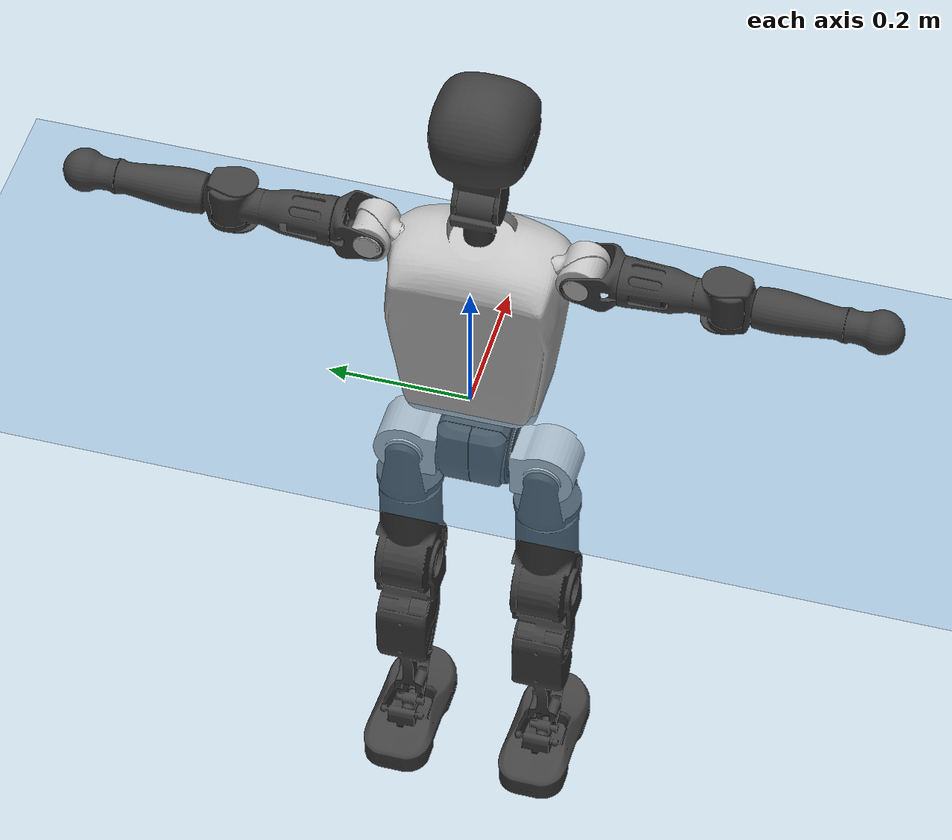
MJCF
<mujoco model="T1">
  <compiler angle="radian" assetdir="assets" balanceinertia="true" inertiafromgeom="false"/>

  <option timestep="0.005" density="1.2" viscosity="2e-05"/>

  <size nkey="1"/>

  <visual>
    <quality shadowsize="8192"/>
    <map shadowclip="0.5"/>
  </visual>

  <default>
    <default class="/">
      <joint armature="0.01" damping="0.01" frictionloss="0.1"/>
      <geom contype="0" conaffinity="0" group="1" solref="-1000 -80"/>
      <site size="0.01 0.005 0.005" group="5"/>
      <general forcelimited="true" biastype="affine" gainprm="25" biasprm="0 -25 -0.6"/>
      <default class="t1">
        <geom rgba="0.25 0.25 0.25 1"/>
        <default class="visual">
          <geom type="mesh" group="2"/>
        </default>
        <default class="collision">
          <geom group="3"/>
        </default>
        <default class="foot">
          <geom size="0.1115 0.05 0.015" type="box" condim="6" group="4" priority="1" solimp="0.015 1 0.015"/>
        </default>
        <default class="reward_collision_sphere">
          <geom group="5" rgba="1 0 0 1"/>
        </default>
      </default>
    </default>
  </default>

  <asset>
    <texture type="skybox" colorspace="auto" name="//unnamed_texture_0" builtin="gradient" rgb1="0.95 0.95 0.95" rgb2="0.95 0.95 0.95" width="100" height="600"/>
    <texture type="2d" colorspace="auto" name="texplane" builtin="checker" rgb1="0.345 0.575 0.748" rgb2="0.345 0.575 0.748" markrgb="1 1 1" width="512" height="512"/>
    <material name="MatPlane" class="/" texture="texplane" texuniform="true" texrepeat="2 2" specular="0.9"/>
    <mesh name="Trunk" class="/" file="Trunk.stl"/>
    <mesh name="H1" class="/" file="H1.stl"/>
    <mesh name="H2" class="/" file="H2.stl"/>
    <mesh name="AL1" class="/" file="AL1.stl"/>
    <mesh name="AL2" class="/" file="AL2.stl"/>
    <mesh name="AL3" class="/" file="AL3.stl"/>
    <mesh name="left_hand_link" class="/" file="left_hand_link.stl"/>
    <mesh name="AR1" class="/" file="AR1.stl"/>
    <mesh name="AR2" class="/" file="AR2.stl"/>
    <mesh name="AR3" class="/" file="AR3.stl"/>
    <mesh name="right_hand_link" class="/" file="right_hand_link.stl"/>
    <mesh name="Waist" class="/" file="Waist.stl"/>
    <mesh name="Hip_Pitch_Left" class="/" file="Hip_Pitch_Left.stl"/>
    <mesh name="Hip_Roll_Left" class="/" file="Hip_Roll_Left.stl"/>
    <mesh name="Hip_Yaw_Left" class="/" file="Hip_Yaw_Left.stl"/>
    <mesh name="Shank_Left" class="/" file="Shank_Left.stl"/>
    <mesh name="Ankle_Cross_Left" class="/" file="Ankle_Cross_Left.stl"/>
    <mesh name="left_foot_link" class="/" file="left_foot_link.stl"/>
    <mesh name="Hip_Pitch_Right" class="/" file="Hip_Pitch_Right.stl"/>
    <mesh name="Hip_Roll_Right" class="/" file="Hip_Roll_Right.stl"/>
    <mesh name="Hip_Yaw_Right" class="/" file="Hip_Yaw_Right.stl"/>
    <mesh name="Shank_Right" class="/" file="Shank_Right.stl"/>
    <mesh name="Ankle_Cross_Right" class="/" file="Ankle_Cross_Right.stl"/>
    <mesh name="right_foot_link" class="/" file="right_foot_link.stl"/>
  </asset>

  <worldbody>
    <geom name="floor" class="/" size="100 100 0.125" type="plane" group="0" material="MatPlane"/>
    <light name="toplight_shadow" class="/" pos="0 0 5" dir="0.0990148 0.0990148 -0.990148" type="directional" ambient="0.04 0.04 0.04" diffuse="0.55 0.55 0.55" specular="0.12 0.12 0.12"/>
    <light name="toplight_fill" class="/" pos="0 0 5" dir="0.0990148 0.0990148 -0.990148" type="directional" castshadow="false" ambient="0.04 0.04 0.04" diffuse="0.3 0.3 0.3" specular="0.08 0.08 0.08"/>
    <body name="trunk" childclass="t1" pos="-0.000216921 -0.000488655 -0.00135007" quat="1 -0.000585684 0.000382669 -0.000460508">
      <inertial pos="0.0401683 -0.000587472 0.117792" quat="0.999955 0.000241185 -0.00946858 -0.000403614" mass="9.16606" diaginertia="0.0194421 0.0527783 0.0964303"/>
      <joint name="//unnamed_joint_0" type="free" armature="0" damping="0" frictionloss="0"/>
      <geom name="//unnamed_geom_1" class="visual" rgba="0.76 0.76 0.76 1" mesh="Trunk"/>
      <geom name="//unnamed_geom_2" class="collision" size="0.0696039 0.0928052 0.139208" pos="0.0440444 0 0.134085" type="box"/>
      <geom name="//unnamed_geom_3" class="reward_collision_sphere" size="0.106726" pos="0.0440444 0 0.111737"/>
      <geom name="//unnamed_geom_4" class="reward_collision_sphere" size="0.0139208" pos="0.0440444 0.0792801 0"/>
      <geom name="//unnamed_geom_5" class="reward_collision_sphere" size="0.0139208" pos="0.0440444 -0.0792801 0"/>
      <geom name="//unnamed_geom_6" class="reward_collision_sphere" size="0.0139208" pos="0.0440444 0.0997997 0.201127"/>
      <geom name="//unnamed_geom_7" class="reward_collision_sphere" size="0.0139208" pos="0.0440444 -0.0997997 0.201127"/>
      <site name="imu" pos="-0.00637878 -0.00231799 0.000349974" size="0.00928052"/>
      <camera name="track" pos="0 -1.86541 0" quat="0.707107 0.707107 0 0" mode="trackcom"/>
      <camera name="ego_camera" pos="0.089557 0 0.469297" quat="-0.5 -0.5 0.5 0.5"/>
      <body name="H1" pos="0.0448386 -0.000146349 0.271227" quat="1 0.000164719 -0.000522325 0.000252062">
        <inertial pos="-0.000907031 -0.00250091 0.0638616" quat="0.764153 -0.0132054 0.00160441 0.644897" mass="0.353734" diaginertia="5.1106e-05 0.000159924 0.000262973"/>
        <joint name="AAHead_yaw" pos="0 0 0" axis="0.000507711 0.00126394 0.999999" stiffness="0.000575807" range="-1.60759 1.57964" armature="0.00944029" damping="0.0144418" frictionloss="0.0885234"/>
        <geom name="//unnamed_geom_8" class="visual" mesh="H1"/>
        <body name="H2" pos="0.000520818 -0.000524705 0.0690344" quat="1 0.000485208 -0.000410856 -0.000488273">
          <inertial pos="0.00535848 0.00120131 0.110135" quat="0.988459 0.106144 -0.0745227 -0.0782852" mass="0.495121" diaginertia="0.000435552 0.00135939 0.00300418"/>
          <joint name="Head_pitch" pos="0 0 0" axis="-0.00363505 -0.999979 -0.00540381" range="-1.22149 0.377521" armature="0.00963454" damping="0.0136982" frictionloss="0.0998943"/>
          <geom name="//unnamed_geom_9" class="visual" mesh="H2"/>
          <geom name="//unnamed_geom_10" class="collision" size="0.0742441" pos="0.00734074 0 0.122911"/>
          <geom name="//unnamed_geom_11" class="reward_collision_sphere" size="0.0835246" pos="0.0146815 0 0.111737"/>
        </body>
      </body>
      <body name="AL1" pos="0.0447138 0.0995285 0.244559" quat="1 -7.42055e-05 0.000188155 -0.000301851">
        <inertial pos="-0.00231833 0.0427002 0.000955225" quat="0.50422 0.495727 -0.504212 0.49577" mass="0.427546" diaginertia="0.000292207 0.000942072 0.000511412"/>
        <joint name="Left_Shoulder_Pitch" pos="0 0 0" axis="0.00108884 0.999999 -0.000404349" range="-3.31326 1.21845" armature="0.00931818" damping="0.00353471" frictionloss="0.097208"/>
        <geom name="//unnamed_geom_12" class="visual" rgba="0.76 0.76 0.76 1" mesh="AL1"/>
        <body name="AL2" pos="0.00159206 0.0433665 -0.00113813" quat="1 0.000283032 0.000338724 -0.000259135">
          <inertial pos="0.00352466 0.0357017 -0.00110904" quat="0.485879 0.512558 -0.491625 0.509423" mass="0.127899" diaginertia="8.56072e-05 0.000244891 0.000305681"/>
          <joint name="Left_Shoulder_Roll" pos="0 0 0" axis="-0.999971 -0.0058044 0.00489101" range="-1.57542 1.7425" armature="0.00953373" damping="0.00603216" frictionloss="0.0866527"/>
          <geom name="//unnamed_geom_13" class="visual" mesh="AL2"/>
          <body name="AL3" pos="-0.000684707 0.0573253 8.77391e-05" quat="1 0.000284573 -4.21642e-05 0.000306123">
            <inertial pos="-0.000437186 0.0795464 0.000590538" quat="0.706343 0.707869 0.000536797 -0.000356165" mass="0.817095" diaginertia="0.00271498 0.00901445 0.00109576"/>
            <joint name="Left_Elbow_Pitch" pos="0 0 0" axis="0.00402996 -0.999989 0.00254372" range="-2.26777 2.27299" armature="0.00935146" damping="0.0113957" frictionloss="0.0883187"/>
            <geom name="//unnamed_geom_14" class="visual" mesh="AL3"/>
            <geom name="//unnamed_geom_15" class="collision" size="0.0278415 0.0696039" pos="0 0.0466354 0" quat="0.707105 0.707108 0 0" type="cylinder"/>
            <geom name="//unnamed_geom_16" class="reward_collision_sphere" size="0.0334099"/>
            <body name="left_hand_link" pos="0.000880096 0.136101 0.00256281" quat="1 -0.000290228 0.000349768 0.000102069">
              <inertial pos="-0.000141435 0.101362 0.00033061" quat="0.70744 0.706772 0.000185275 -0.00124357" mass="0.270113" diaginertia="0.00174096 0.00582937 0.000382027"/>
              <joint name="Left_Elbow_Yaw" pos="0 0 0" axis="-0.000606605 -0.00829002 0.999965" range="-2.45602 -0.00427472" armature="0.00938627" damping="0.0117642" frictionloss="0.0902407"/>
              <geom name="//unnamed_geom_17" class="visual" mesh="left_hand_link"/>
              <geom name="//unnamed_geom_18" class="collision" size="0.0278415 0.0812045" pos="0 0.121252 0" quat="0.707105 0.707108 0 0" type="cylinder"/>
              <geom name="//unnamed_geom_19" class="reward_collision_sphere" size="0.0464026"/>
              <geom name="//unnamed_geom_20" class="reward_collision_sphere" size="0.0324818" pos="0 0.102598 0"/>
              <geom name="//unnamed_geom_21" class="reward_collision_sphere" size="0.0324818" pos="0 0.200532 0"/>
            </body>
          </body>
        </body>
      </body>
      <body name="AR1" pos="0.0419503 -0.097755 0.245313" quat="1 -0.000541586 0.000510471 5.61511e-05">
        <inertial pos="-0.000879664 -0.0411885 -0.000236177" quat="0.502457 0.495129 -0.508293 0.493986" mass="0.429285" diaginertia="0.000292952 0.000923848 0.000516329"/>
        <joint name="Right_Shoulder_Pitch" pos="0 0 0" axis="-0.00261195 -0.999997 -0.000189823" range="-1.22584 3.29962" armature="0.00909534" damping="0.00507425" frictionloss="0.0951028"/>
        <geom name="//unnamed_geom_22" class="visual" rgba="0.76 0.76 0.76 1" mesh="AR1"/>
        <body name="AR2" pos="-0.000462001 -0.0441113 -0.00142711" quat="1 8.98371e-05 -0.000133996 -2.50318e-05">
          <inertial pos="0.00378025 -0.0355482 0.000188619" quat="0.511583 0.487027 -0.511596 0.489241" mass="0.12647" diaginertia="8.71541e-05 0.000242076 0.000304097"/>
          <joint name="Right_Shoulder_Roll" pos="0 0 0" axis="-0.999994 -0.00233511 0.00240818" range="-1.74804 1.57497" armature="0.00934029" damping="0.000986528" frictionloss="0.096488"/>
          <geom name="//unnamed_geom_23" class="visual" mesh="AR2"/>
          <body name="AR3" pos="-0.000803425 -0.0560113 0.00048536" quat="1 -1.6026e-05 0.000102568 -0.000144413">
            <inertial pos="-0.00196385 -0.0799764 -7.4005e-05" quat="0.707448 0.706765 0.000725242 -0.00022006" mass="0.835425" diaginertia="0.0027837 0.00906289 0.0010811"/>
            <joint name="Right_Elbow_Pitch" pos="0 0 0" axis="0.000789969 0.999988 -0.00474833" range="-2.26685 2.28797" armature="0.00917425" damping="0.0113245" frictionloss="0.0906115"/>
            <geom name="//unnamed_geom_24" class="visual" mesh="AR3"/>
            <geom name="//unnamed_geom_25" class="collision" size="0.0278415 0.0696039" pos="0 -0.0466354 0" quat="0.707105 0.707108 0 0" type="cylinder"/>
            <geom name="//unnamed_geom_26" class="reward_collision_sphere" size="0.0334099"/>
            <body name="right_hand_link" pos="-0.000589641 -0.136748 0.0010261" quat="1 -2.51265e-05 -1.99172e-06 -0.000135815">
              <inertial pos="0.000146785 -0.102027 0.00140775" quat="0.708007 0.706204 -0.00122995 0.00037442" mass="0.264956" diaginertia="0.0017416 0.00587777 0.000374363"/>
              <joint name="Right_Elbow_Yaw" pos="0 0 0" axis="0.00263579 -0.00231732 0.999994" stiffness="0.00269089" range="-0.00844849 2.43804" armature="0.00949537" damping="0.0108894" frictionloss="0.0936191"/>
              <geom name="//unnamed_geom_27" class="visual" mesh="right_hand_link"/>
              <geom name="//unnamed_geom_28" class="collision" size="0.0278415 0.0812045" pos="0 -0.121252 0" quat="0.707105 0.707108 0 0" type="cylinder"/>
              <geom name="//unnamed_geom_29" class="reward_collision_sphere" size="0.0464026"/>
              <geom name="//unnamed_geom_30" class="reward_collision_sphere" size="0.0324818" pos="0 -0.102598 0"/>
              <geom name="//unnamed_geom_31" class="reward_collision_sphere" size="0.0324818" pos="0 -0.200532 0"/>
            </body>
          </body>
        </body>
      </body>
      <body name="Waist" pos="0.0457891 -0.000413496 -0.129525" quat="1 8.3124e-05 -0.000172602 8.15535e-05">
        <inertial pos="0.000792651 -0.000964992 0.00723452" quat="0.98345 0.00156734 -0.181153 0.00271072" mass="2.06707" diaginertia="0.00115494 0.00379915 0.00834617"/>
        <joint name="Waist" pos="0 0 0" axis="-0.00195009 -0.000919863 0.999998" range="-1.56848 1.55259" armature="0.00915999" damping="0" frictionloss="0.0921411"/>
        <geom name="//unnamed_geom_32" class="visual" mesh="Waist"/>
        <body name="Hip_Pitch_Left" pos="0.000538416 0.100297 0.000547719" quat="1 -4.34942e-05 9.29691e-05 -6.8224e-05">
          <inertial pos="0.00125784 -0.00719013 -0.0220726" quat="0.975249 0.220635 0.0142553 0.00247654" mass="0.826228" diaginertia="0.000381454 0.00102847 0.00218883"/>
          <joint name="Left_Hip_Pitch" pos="0 0 0" axis="-0.00234683 0.999983 0.00525031" range="-1.79181 1.56699" armature="0.00926959" damping="0.00795237" frictionloss="0.0900786"/>
          <geom name="//unnamed_geom_33" class="visual" rgba="0.76 0.76 0.76 1" mesh="Hip_Pitch_Left"/>
          <body name="Hip_Roll_Left" pos="-0.000870634 0.000312415 -0.0233784" quat="1 -1.53672e-05 -0.000117735 -3.65012e-06">
            <inertial pos="0.00140883 -0.000276059 -0.0601713" quat="0.705974 -0.00162482 -0.0045167 0.708221" mass="0.30597" diaginertia="0.000370036 0.0010597 0.000891751"/>
            <joint name="Left_Hip_Roll" pos="0 0 0" axis="-0.999989 0.0035143 0.00321791" stiffness="0.000223178" range="-1.57176 0.203385" armature="0.0092251" damping="0.00829583" frictionloss="0.0936084"/>
            <geom name="//unnamed_geom_34" class="visual" mesh="Hip_Roll_Left"/>
            <geom name="//unnamed_geom_35" class="reward_collision_sphere" size="0.0510428"/>
            <body name="Hip_Yaw_Left" pos="0.000569204 0.00012653 -0.0905547" quat="1 9.8621e-06 3.03756e-05 1.1804e-05">
              <inertial pos="-0.0051027 -0.000855727 -0.10101" quat="0.697952 -0.0370635 -0.0298263 0.714563" mass="1.73263" diaginertia="0.0055953 0.017662 0.00450471"/>
              <joint name="Left_Hip_Yaw" pos="0 0 0" axis="0.000264729 -0.00173374 -0.999998" range="-1.00061 1.00709" armature="0.00929375" damping="0.0120012" frictionloss="0.0887364"/>
              <geom name="//unnamed_geom_36" class="visual" mesh="Hip_Yaw_Left"/>
              <geom name="//unnamed_geom_37" class="collision" size="0.0464026 0.0742441" type="cylinder"/>
              <body name="Shank_Left" pos="-0.00927151 0.00111743 -0.149876" quat="1 0.000613353 0.000250332 -0.000428177">
                <inertial pos="-0.00537304 -0.00134265 -0.138039" quat="0.997821 -0.00132601 -0.0223975 0.0620468" mass="1.37084" diaginertia="0.00734382 0.0240269 0.00319459"/>
                <joint name="Left_Knee_Pitch" pos="0 0 0" axis="-0.000716068 1 0.000356759" range="0.00460186 2.3407" armature="0.0092106" damping="0.0108788" frictionloss="0.0878302"/>
                <geom name="//unnamed_geom_38" class="visual" mesh="Shank_Left"/>
                <geom name="//unnamed_geom_39" class="collision" size="0.0464026 0.0696039" pos="0 0 -0.134085" type="cylinder"/>
                <geom name="//unnamed_geom_40" class="reward_collision_sphere" size="0.0603234"/>
                <body name="Ankle_Cross_Left" pos="-0.00179352 0.000654264 -0.31373" quat="1 -5.20456e-05 -7.01498e-05 5.05269e-05">
                  <inertial pos="-0.0021219 -0.000135196 -0.00895878" quat="0.440868 0.548125 0.550452 0.449663" mass="0.057397" diaginertia="6.16533e-06 1.78538e-05 1.96495e-05"/>
                  <joint name="Left_Ankle_Pitch" pos="0 0 0" axis="-0.00237947 0.999994 -0.00265093" range="-0.86622 0.332817" armature="0.00940707" damping="0.00530019" frictionloss="0.0938061"/>
                  <geom name="//unnamed_geom_41" class="visual" mesh="Ankle_Cross_Left"/>
                  <body name="left_foot_link" pos="-0.000570733 -0.000166648 -0.0140146" quat="1 -0.000262176 0.00015344 0.000123123">
                    <inertial pos="-0.000177405 -5.06739e-06 -0.00836814" quat="-0.000156452 0.620605 5.11913e-05 0.784124" mass="0.556576" diaginertia="0.000581415 0.00169666 0.00388879"/>
                    <joint name="Left_Ankle_Roll" pos="0 0 0" axis="-0.999999 -0.000632664 -0.00114256" range="-0.437145 0.420208" armature="0.00922714" damping="0.016919" frictionloss="0.0925298"/>
                    <geom name="//unnamed_geom_42" class="visual" mesh="left_foot_link"/>
                    <geom name="left_foot" class="foot" size="0.106804 0.0505981 0.0137832" pos="0.00734074 0 -0.0167606"/>
                    <geom name="//unnamed_geom_44" class="reward_collision_sphere" size="0.0482587" pos="0.00734074 0 -0.0167606"/>
                    <geom name="//unnamed_geom_45" class="reward_collision_sphere" size="0.0278415" pos="0.069737 -0.0214523 -0.0167606"/>
                    <geom name="//unnamed_geom_46" class="reward_collision_sphere" size="0.0278415" pos="-0.0513852 -0.0214523 -0.0167606"/>
                    <site name="left_foot" class="foot" pos="0.00734074 0 -0.0167606" size="0.00928052"/>
                  </body>
                </body>
              </body>
            </body>
          </body>
        </body>
        <body name="Hip_Pitch_Right" pos="-0.00103718 -0.0979733 0.000656036" quat="1 -0.000241258 -1.66666e-05 0.000181425">
          <inertial pos="8.9168e-05 0.00544916 -0.0202323" quat="0.972944 -0.230676 0.0111919 -0.00653294" mass="0.812479" diaginertia="0.000385802 0.00102948 0.00214269"/>
          <joint name="Right_Hip_Pitch" pos="0 0 0" axis="0.000256639 -1 0.000135809" range="-1.58276 1.78282" armature="0.00931264" damping="0.00382947" frictionloss="0.0997643"/>
          <geom name="//unnamed_geom_47" class="visual" rgba="0.76 0.76 0.76 1" mesh="Hip_Pitch_Right"/>
          <body name="Hip_Roll_Right" pos="-0.00153591 -0.000575611 -0.0220717" quat="1 2.20087e-05 2.00623e-06 4.92229e-05">
            <inertial pos="0.00151104 -0.000181754 -0.0609384" quat="0.707041 -0.00609968 -0.00574074 0.707123" mass="0.307404" diaginertia="0.000362504 0.00105879 0.000887974"/>
            <joint name="Right_Hip_Roll" pos="0 0 0" axis="-1 0.000183247 -0.00025242" range="-0.210429 1.58793" armature="0.00945376" damping="0.0133469" frictionloss="0.0948614"/>
            <geom name="//unnamed_geom_48" class="visual" mesh="Hip_Roll_Right"/>
            <geom name="//unnamed_geom_49" class="reward_collision_sphere" size="0.0510428"/>
            <body name="Hip_Yaw_Right" pos="0.000644734 0.000486433 -0.0912399" quat="1 -6.88182e-05 -2.92578e-05 -0.000151293">
              <inertial pos="-0.00542037 0.00136238 -0.099556" quat="0.714761 -0.0308117 -0.0346003 0.697833" mass="1.71475" diaginertia="0.00543696 0.017342 0.00447106"/>
              <joint name="Right_Hip_Yaw" pos="0 0 0" axis="-0.00115847 0.00174712 -0.999998" stiffness="0.00236567" range="-0.999331 1.00527" armature="0.00925859" damping="0.0102859" frictionloss="0.0929245"/>
              <geom name="//unnamed_geom_50" class="visual" mesh="Hip_Yaw_Right"/>
              <geom name="//unnamed_geom_51" class="collision" size="0.0464026 0.0742441" type="cylinder"/>
              <body name="Shank_Right" pos="-0.00949513 -0.000921625 -0.148528" quat="1 3.16215e-06 1.17805e-06 1.22085e-06">
                <inertial pos="-0.00656942 -0.00109291 -0.136742" quat="0.999458 0.0040236 -0.0215791 -0.0245423" mass="1.39815" diaginertia="0.00734779 0.0242106 0.00335963"/>
                <joint name="Right_Knee_Pitch" pos="0 0 0" axis="-0.00321037 -0.999977 -0.00594232" range="-2.3383 -0.0235569" armature="0.00925601" damping="0.0058889" frictionloss="0.0940578"/>
                <geom name="//unnamed_geom_52" class="visual" mesh="Shank_Right"/>
                <geom name="//unnamed_geom_53" class="collision" size="0.0464026 0.0696039" pos="0 0 -0.134085" type="cylinder"/>
                <geom name="//unnamed_geom_54" class="reward_collision_sphere" size="0.0603234"/>
                <body name="Ankle_Cross_Right" pos="0.00135104 0.000479688 -0.313799" quat="1 0.000265095 0.00038706 4.24051e-05">
                  <inertial pos="-0.00261444 0.00115343 -0.00927115" quat="0.441126 0.553622 0.548926 0.444512" mass="0.0592192" diaginertia="6.22058e-06 1.80891e-05 1.98384e-05"/>
                  <joint name="Right_Ankle_Pitch" pos="0 0 0" axis="0.000432955 -1 -0.00085278" range="-0.312196 0.857253" armature="0.00910732" damping="0.00443766" frictionloss="0.0938213"/>
                  <geom name="//unnamed_geom_55" class="visual" mesh="Ankle_Cross_Right"/>
                  <body name="right_foot_link" pos="0.00106715 -0.000631867 -0.0138268" quat="1 3.63841e-05 -0.000153624 6.32055e-05">
                    <inertial pos="9.22268e-05 0.00088718 -0.00853747" quat="-0.00104505 0.619842 0.00167279 0.784724" mass="0.545073" diaginertia="0.000575807 0.00169416 0.00383078"/>
                    <joint name="Right_Ankle_Roll" pos="0 0 0" axis="-0.999999 0.001063 -4.68407e-05" range="-0.43166 0.43387" armature="0.00955433" damping="0.0136101" frictionloss="0.10161"/>
                    <geom name="//unnamed_geom_56" class="visual" mesh="right_foot_link"/>
                    <geom name="right_foot" class="foot" size="0.10171 0.0421899 0.0150579" pos="0.00734074 0 -0.0167606"/>
                    <geom name="//unnamed_geom_58" class="reward_collision_sphere" size="0.0371221"/>
                    <geom name="//unnamed_geom_59" class="reward_collision_sphere" size="0.0278415" pos="0.00734074 0 -0.0167606"/>
                    <geom name="//unnamed_geom_60" class="reward_collision_sphere" size="0.0278415" pos="0.069737 0.0214523 -0.0167606"/>
                    <geom name="//unnamed_geom_61" class="reward_collision_sphere" size="0.0278415" pos="-0.0513852 0.0214523 -0.0167606"/>
                    <site name="right_foot" class="foot" pos="0.00734074 0 -0.0167606" size="0.00928052"/>
                  </body>
                </body>
              </body>
            </body>
          </body>
        </body>
      </body>
    </body>
  </worldbody>

  <contact>
    <pair class="/" geom1="floor" geom2="left_foot" name="//unnamed_contact_0"/>
    <pair class="/" geom1="floor" geom2="right_foot" name="//unnamed_contact_1"/>
  </contact>

  <actuator>
    <general name="AAHead_yaw" class="/" joint="AAHead_yaw" forcerange="-6.52967 6.52967" gainprm="23.2064" biasprm="0 -23.2064 -0.545631"/>
    <general name="Head_pitch" class="/" joint="Head_pitch" forcerange="-6.25878 6.25878" gainprm="23.2064" biasprm="0 -23.2064 -0.545631"/>
    <general name="Left_Shoulder_Pitch" class="/" joint="Left_Shoulder_Pitch" forcerange="-17.2274 17.2274" gainprm="23.2064" biasprm="0 -23.2064 -0.545631"/>
    <general name="Left_Shoulder_Roll" class="/" joint="Left_Shoulder_Roll" forcerange="-16.4616 16.4616" gainprm="23.2064" biasprm="0 -23.2064 -0.545631"/>
    <general name="Left_Elbow_Pitch" class="/" joint="Left_Elbow_Pitch" forcerange="-16.3434 16.3434" gainprm="23.2064" biasprm="0 -23.2064 -0.545631"/>
    <general name="Left_Elbow_Yaw" class="/" joint="Left_Elbow_Yaw" forcerange="-16.8455 16.8455" gainprm="23.2064" biasprm="0 -23.2064 -0.545631"/>
    <general name="Right_Shoulder_Pitch" class="/" joint="Right_Shoulder_Pitch" forcerange="-16.8341 16.8341" gainprm="23.2064" biasprm="0 -23.2064 -0.545631"/>
    <general name="Right_Shoulder_Roll" class="/" joint="Right_Shoulder_Roll" forcerange="-16.2953 16.2953" gainprm="23.2064" biasprm="0 -23.2064 -0.545631"/>
    <general name="Right_Elbow_Pitch" class="/" joint="Right_Elbow_Pitch" forcerange="-16.8196 16.8196" gainprm="23.2064" biasprm="0 -23.2064 -0.545631"/>
    <general name="Right_Elbow_Yaw" class="/" joint="Right_Elbow_Yaw" forcerange="-16.6384 16.6384" gainprm="23.2064" biasprm="0 -23.2064 -0.545631"/>
    <general name="Waist" class="/" joint="Waist" forcerange="-28.1639 28.1639" gainprm="23.2064" biasprm="0 -23.2064 -0.545631"/>
    <general name="Left_Hip_Pitch" class="/" joint="Left_Hip_Pitch" forcerange="-41.7254 41.7254" gainprm="23.2064" biasprm="0 -23.2064 -0.545631"/>
    <general name="Left_Hip_Roll" class="/" joint="Left_Hip_Roll" forcerange="-29.4124 29.4124" gainprm="23.2064" biasprm="0 -23.2064 -0.545631"/>
    <general name="Left_Hip_Yaw" class="/" joint="Left_Hip_Yaw" forcerange="-28.4789 28.4789" gainprm="23.2064" biasprm="0 -23.2064 -0.545631"/>
    <general name="Left_Knee_Pitch" class="/" joint="Left_Knee_Pitch" forcerange="-57.9806 57.9806" gainprm="23.2064" biasprm="0 -23.2064 -0.545631"/>
    <general name="Left_Ankle_Pitch" class="/" joint="Left_Ankle_Pitch" forcerange="-19.0324 19.0324" gainprm="23.2064" biasprm="0 -23.2064 -0.545631"/>
    <general name="Left_Ankle_Roll" class="/" joint="Left_Ankle_Roll" forcerange="-14.3609 14.3609" gainprm="23.2064" biasprm="0 -23.2064 -0.545631"/>
    <general name="Right_Hip_Pitch" class="/" joint="Right_Hip_Pitch" forcerange="-40.4707 40.4707" gainprm="23.2064" biasprm="0 -23.2064 -0.545631"/>
    <general name="Right_Hip_Roll" class="/" joint="Right_Hip_Roll" forcerange="-27.301 27.301" gainprm="23.2064" biasprm="0 -23.2064 -0.545631"/>
    <general name="Right_Hip_Yaw" class="/" joint="Right_Hip_Yaw" forcerange="-27.3586 27.3586" gainprm="23.2064" biasprm="0 -23.2064 -0.545631"/>
    <general name="Right_Knee_Pitch" class="/" joint="Right_Knee_Pitch" forcerange="-56.2351 56.2351" gainprm="23.2064" biasprm="0 -23.2064 -0.545631"/>
    <general name="Right_Ankle_Pitch" class="/" joint="Right_Ankle_Pitch" forcerange="-18.7318 18.7318" gainprm="23.2064" biasprm="0 -23.2064 -0.545631"/>
    <general name="Right_Ankle_Roll" class="/" joint="Right_Ankle_Roll" forcerange="-13.8354 13.8354" gainprm="23.2064" biasprm="0 -23.2064 -0.545631"/>
  </actuator>

  <sensor>
    <gyro site="imu" name="imu_angular_velocity"/>
    <velocimeter site="imu" name="imu_linear_velocity"/>
    <framelinvel objtype="site" objname="left_foot" name="left_foot_global_linear_velocity"/>
    <framelinvel objtype="site" objname="right_foot" name="right_foot_global_linear_velocity"/>
  </sensor>

  <keyframe>
    <key name="home" qpos="0 0 0.6385 1 0 0 0 0 0 0 1.4 0 -0.4 0 -1.4 0 0.4 0 -0.4 0 0 0.8 -0.4 0 0.4 0 0 -0.8 0.4 0"/>
  </keyframe>
</mujoco>
